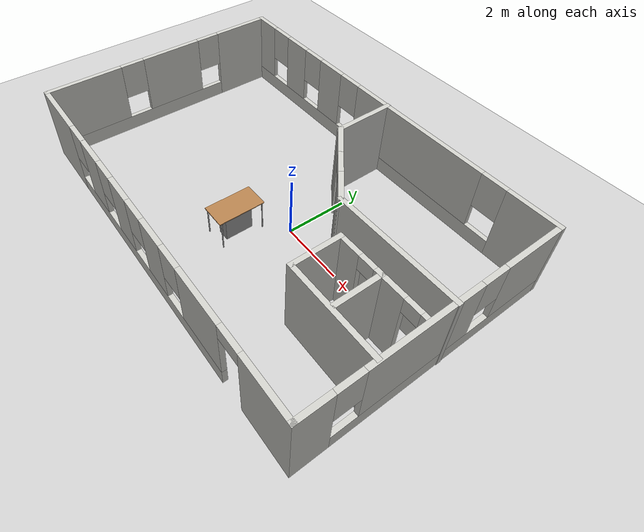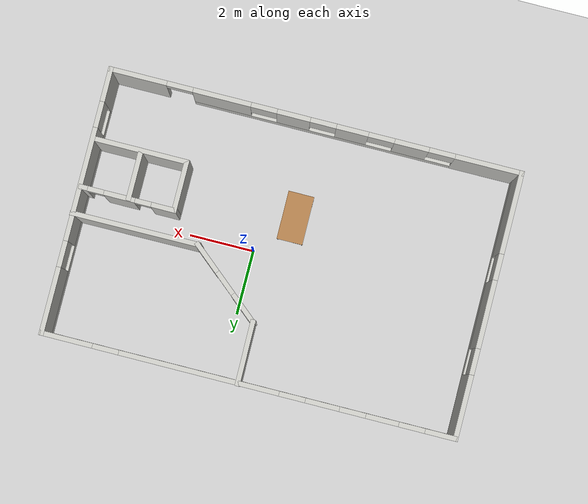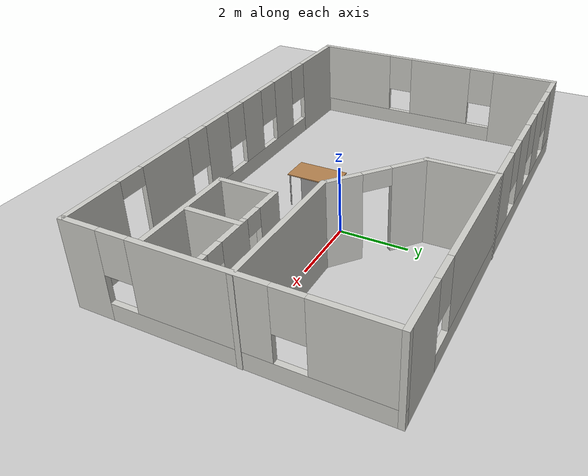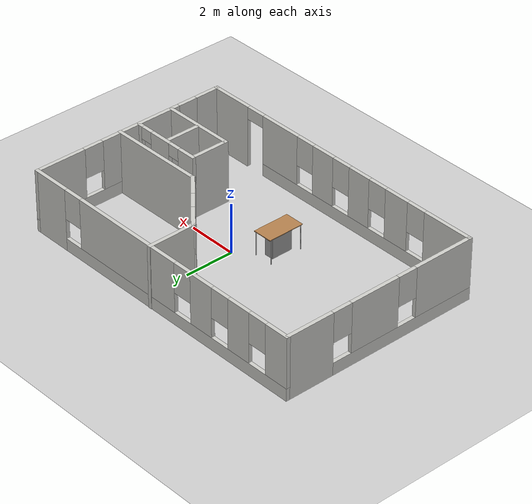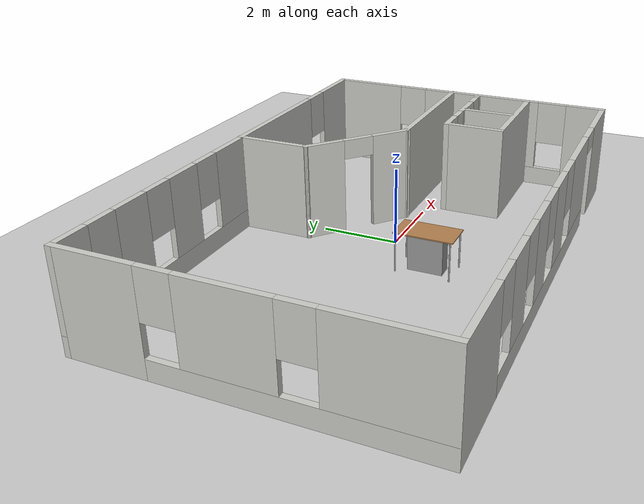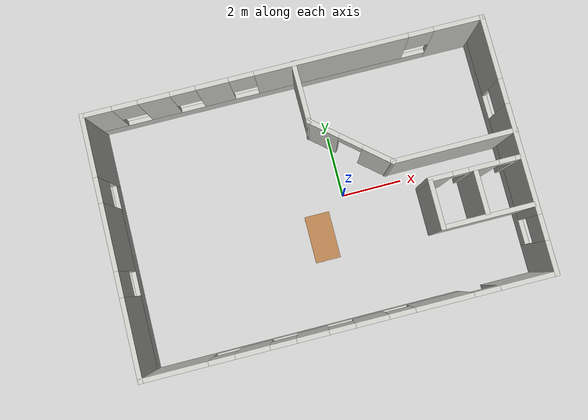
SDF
<sdf version="1.6">
 <world name="default">
  <model name="ground_plane">
   <static>1</static>
   <link name="link">
    <collision name="collision">
     <geometry><plane><normal>0 0 1</normal><size>100 100</size></plane></geometry>
     <surface><friction><ode><mu>100</mu><mu2>50</mu2></ode></friction></surface>
    </collision>
    <visual name="visual">
     <cast_shadows>0</cast_shadows>
     <geometry><plane><normal>0 0 1</normal><size>100 100</size></plane></geometry>
     <material>
      <script><uri>file://media/materials/scripts/gazebo.material</uri><name>Gazebo/Grey</name></script>
     </material>
    </visual>
   </link>
  </model>
  <model name="restaurant">
   <pose>-0.910578 -0.005951 0 0 -0 0</pose>
   <link name="Wall_0">
    <pose>-0.00791 4.04129 0 0 -0 3.14159</pose>
    <visual name="Wall_0_Visual_0">
     <pose>-5.56163 0 1.25 0 -0 0</pose>
     <geometry><box><size>1.62673 0.15 2.5</size></box></geometry>
     <material>
      <script><uri>file://media/materials/scripts/gazebo.material</uri><name>Gazebo/CeilingTiled</name></script>
      <ambient>1 1 1 1</ambient>
     </material>
     <meta><layer>0</layer></meta>
    </visual>
    <collision name="Wall_0_Collision_0">
     <geometry><box><size>1.62673 0.15 2.5</size></box></geometry>
     <pose>-5.56163 0 1.25 0 -0 0</pose>
    </collision>
    <visual name="Wall_0_Visual_1">
     <pose>0.813365 0 0.25 0 -0 0</pose>
     <geometry><box><size>11.1233 0.15 0.5</size></box></geometry>
     <material>
      <script><uri>file://media/materials/scripts/gazebo.material</uri><name>Gazebo/CeilingTiled</name></script>
      <ambient>1 1 1 1</ambient>
     </material>
     <meta><layer>0</layer></meta>
    </visual>
    <collision name="Wall_0_Collision_1">
     <geometry><box><size>11.1233 0.15 0.5</size></box></geometry>
     <pose>0.813365 0 0.25 0 -0 0</pose>
    </collision>
    <visual name="Wall_0_Visual_2">
     <pose>-1.50614 0 1.5 0 -0 0</pose>
     <geometry><box><size>4.88427 0.15 2</size></box></geometry>
     <material>
      <script><uri>file://media/materials/scripts/gazebo.material</uri><name>Gazebo/CeilingTiled</name></script>
      <ambient>1 1 1 1</ambient>
     </material>
     <meta><layer>0</layer></meta>
    </visual>
    <collision name="Wall_0_Collision_2">
     <geometry><box><size>4.88427 0.15 2</size></box></geometry>
     <pose>-1.50614 0 1.5 0 -0 0</pose>
    </collision>
    <visual name="Wall_0_Visual_3">
     <pose>2.25423 0 1.5 0 -0 0</pose>
     <geometry><box><size>1.03646 0.15 2</size></box></geometry>
     <material>
      <script><uri>file://media/materials/scripts/gazebo.material</uri><name>Gazebo/CeilingTiled</name></script>
      <ambient>1 1 1 1</ambient>
     </material>
     <meta><layer>0</layer></meta>
    </visual>
    <collision name="Wall_0_Collision_3">
     <geometry><box><size>1.03646 0.15 2</size></box></geometry>
     <pose>2.25423 0 1.5 0 -0 0</pose>
    </collision>
    <visual name="Wall_0_Visual_4">
     <pose>4.07319 0 1.5 0 -0 0</pose>
     <geometry><box><size>1.00148 0.15 2</size></box></geometry>
     <material>
      <script><uri>file://media/materials/scripts/gazebo.material</uri><name>Gazebo/CeilingTiled</name></script>
      <ambient>1 1 1 1</ambient>
     </material>
     <meta><layer>0</layer></meta>
    </visual>
    <collision name="Wall_0_Collision_4">
     <geometry><box><size>1.00148 0.15 2</size></box></geometry>
     <pose>4.07319 0 1.5 0 -0 0</pose>
    </collision>
    <visual name="Wall_0_Visual_5">
     <pose>5.87447 0 1.5 0 -0 0</pose>
     <geometry><box><size>1.00107 0.15 2</size></box></geometry>
     <material>
      <script><uri>file://media/materials/scripts/gazebo.material</uri><name>Gazebo/CeilingTiled</name></script>
      <ambient>1 1 1 1</ambient>
     </material>
     <meta><layer>0</layer></meta>
    </visual>
    <collision name="Wall_0_Collision_5">
     <geometry><box><size>1.00107 0.15 2</size></box></geometry>
     <pose>5.87447 0 1.5 0 -0 0</pose>
    </collision>
    <visual name="Wall_0_Visual_6">
     <pose>-4.34827 0 1.9 0 -0 0</pose>
     <geometry><box><size>0.8 0.15 1.2</size></box></geometry>
     <material>
      <script><uri>file://media/materials/scripts/gazebo.material</uri><name>Gazebo/CeilingTiled</name></script>
      <ambient>1 1 1 1</ambient>
     </material>
     <meta><layer>0</layer></meta>
    </visual>
    <collision name="Wall_0_Collision_6">
     <geometry><box><size>0.8 0.15 1.2</size></box></geometry>
     <pose>-4.34827 0 1.9 0 -0 0</pose>
    </collision>
    <visual name="Wall_0_Visual_7">
     <pose>1.336 0 1.9 0 -0 0</pose>
     <geometry><box><size>0.8 0.15 1.2</size></box></geometry>
     <material>
      <script><uri>file://media/materials/scripts/gazebo.material</uri><name>Gazebo/CeilingTiled</name></script>
      <ambient>1 1 1 1</ambient>
     </material>
     <meta><layer>0</layer></meta>
    </visual>
    <collision name="Wall_0_Collision_7">
     <geometry><box><size>0.8 0.15 1.2</size></box></geometry>
     <pose>1.336 0 1.9 0 -0 0</pose>
    </collision>
    <visual name="Wall_0_Visual_8">
     <pose>3.17246 0 1.9 0 -0 0</pose>
     <geometry><box><size>0.8 0.15 1.2</size></box></geometry>
     <material>
      <script><uri>file://media/materials/scripts/gazebo.material</uri><name>Gazebo/CeilingTiled</name></script>
      <ambient>1 1 1 1</ambient>
     </material>
     <meta><layer>0</layer></meta>
    </visual>
    <collision name="Wall_0_Collision_8">
     <geometry><box><size>0.8 0.15 1.2</size></box></geometry>
     <pose>3.17246 0 1.9 0 -0 0</pose>
    </collision>
    <visual name="Wall_0_Visual_9">
     <pose>4.97393 0 1.9 0 -0 0</pose>
     <geometry><box><size>0.8 0.15 1.2</size></box></geometry>
     <material>
      <script><uri>file://media/materials/scripts/gazebo.material</uri><name>Gazebo/CeilingTiled</name></script>
      <ambient>1 1 1 1</ambient>
     </material>
     <meta><layer>0</layer></meta>
    </visual>
    <collision name="Wall_0_Collision_9">
     <geometry><box><size>0.8 0.15 1.2</size></box></geometry>
     <pose>4.97393 0 1.9 0 -0 0</pose>
    </collision>
   </link>
   <link name="Wall_1">
    <pose>-6.30791 -0.008707 0 0 0 -1.5708</pose>
    <visual name="Wall_1_Visual_0">
     <pose>-3.11766 0 1.25 0 -0 0</pose>
     <geometry><box><size>2.01468 0.15 2.5</size></box></geometry>
     <material>
      <script><uri>file://media/materials/scripts/gazebo.material</uri><name>Gazebo/CeilingTiled</name></script>
      <ambient>1 1 1 1</ambient>
     </material>
     <meta><layer>0</layer></meta>
    </visual>
    <collision name="Wall_1_Collision_0">
     <geometry><box><size>2.01468 0.15 2.5</size></box></geometry>
     <pose>-3.11766 0 1.25 0 -0 0</pose>
    </collision>
    <visual name="Wall_1_Visual_1">
     <pose>1.00734 0 0.25 0 -0 0</pose>
     <geometry><box><size>6.23532 0.15 0.5</size></box></geometry>
     <material>
      <script><uri>file://media/materials/scripts/gazebo.material</uri><name>Gazebo/CeilingTiled</name></script>
      <ambient>1 1 1 1</ambient>
     </material>
     <meta><layer>0</layer></meta>
    </visual>
    <collision name="Wall_1_Collision_1">
     <geometry><box><size>6.23532 0.15 0.5</size></box></geometry>
     <pose>1.00734 0 0.25 0 -0 0</pose>
    </collision>
    <visual name="Wall_1_Visual_2">
     <pose>-0.267389 0 1.5 0 -0 0</pose>
     <geometry><box><size>2.08586 0.15 2</size></box></geometry>
     <material>
      <script><uri>file://media/materials/scripts/gazebo.material</uri><name>Gazebo/CeilingTiled</name></script>
      <ambient>1 1 1 1</ambient>
     </material>
     <meta><layer>0</layer></meta>
    </visual>
    <collision name="Wall_1_Collision_2">
     <geometry><box><size>2.08586 0.15 2</size></box></geometry>
     <pose>-0.267389 0 1.5 0 -0 0</pose>
    </collision>
    <visual name="Wall_1_Visual_3">
     <pose>2.85027 0 1.5 0 -0 0</pose>
     <geometry><box><size>2.54946 0.15 2</size></box></geometry>
     <material>
      <script><uri>file://media/materials/scripts/gazebo.material</uri><name>Gazebo/CeilingTiled</name></script>
      <ambient>1 1 1 1</ambient>
     </material>
     <meta><layer>0</layer></meta>
    </visual>
    <collision name="Wall_1_Collision_3">
     <geometry><box><size>2.54946 0.15 2</size></box></geometry>
     <pose>2.85027 0 1.5 0 -0 0</pose>
    </collision>
    <visual name="Wall_1_Visual_4">
     <pose>-1.71032 0 1.9 0 -0 0</pose>
     <geometry><box><size>0.8 0.15 1.2</size></box></geometry>
     <material>
      <script><uri>file://media/materials/scripts/gazebo.material</uri><name>Gazebo/CeilingTiled</name></script>
      <ambient>1 1 1 1</ambient>
     </material>
     <meta><layer>0</layer></meta>
    </visual>
    <collision name="Wall_1_Collision_4">
     <geometry><box><size>0.8 0.15 1.2</size></box></geometry>
     <pose>-1.71032 0 1.9 0 -0 0</pose>
    </collision>
    <visual name="Wall_1_Visual_5">
     <pose>1.17554 0 1.9 0 -0 0</pose>
     <geometry><box><size>0.8 0.15 1.2</size></box></geometry>
     <material>
      <script><uri>file://media/materials/scripts/gazebo.material</uri><name>Gazebo/CeilingTiled</name></script>
      <ambient>1 1 1 1</ambient>
     </material>
     <meta><layer>0</layer></meta>
    </visual>
    <collision name="Wall_1_Collision_5">
     <geometry><box><size>0.8 0.15 1.2</size></box></geometry>
     <pose>1.17554 0 1.9 0 -0 0</pose>
    </collision>
   </link>
   <link name="Wall_12">
    <collision name="Wall_12_Collision">
     <geometry><box><size>3 0.15 2.5</size></box></geometry>
     <pose>0 0 1.25 0 -0 0</pose>
    </collision>
    <visual name="Wall_12_Visual">
     <pose>0 0 1.25 0 -0 0</pose>
     <geometry><box><size>3 0.15 2.5</size></box></geometry>
     <material>
      <script><uri>file://media/materials/scripts/gazebo.material</uri><name>Gazebo/CeilingTiled</name></script>
      <ambient>1 1 1 1</ambient>
     </material>
     <meta><layer>0</layer></meta>
    </visual>
    <pose>4.83059 -1.92356 0 0 -0 3.14159</pose>
   </link>
   <link name="Wall_15">
    <pose>4.83059 -0.436903 0 0 -0 3.14159</pose>
    <visual name="Wall_15_Visual_0">
     <pose>-1.36407 0 1.25 0 -0 0</pose>
     <geometry><box><size>0.271862 0.15 2.5</size></box></geometry>
     <material>
      <script><uri>file://media/materials/scripts/gazebo.material</uri><name>Gazebo/CeilingTiled</name></script>
      <ambient>1 1 1 1</ambient>
     </material>
     <meta><layer>0</layer></meta>
    </visual>
    <collision name="Wall_15_Collision_0">
     <geometry><box><size>0.271862 0.15 2.5</size></box></geometry>
     <pose>-1.36407 0 1.25 0 -0 0</pose>
    </collision>
    <visual name="Wall_15_Visual_1">
     <pose>-0.253638 0 1.25 0 -0 0</pose>
     <geometry><box><size>0.949 0.15 2.5</size></box></geometry>
     <material>
      <script><uri>file://media/materials/scripts/gazebo.material</uri><name>Gazebo/CeilingTiled</name></script>
      <ambient>1 1 1 1</ambient>
     </material>
     <meta><layer>0</layer></meta>
    </visual>
    <collision name="Wall_15_Collision_1">
     <geometry><box><size>0.949 0.15 2.5</size></box></geometry>
     <pose>-0.253638 0 1.25 0 -0 0</pose>
    </collision>
    <visual name="Wall_15_Visual_2">
     <pose>1.11043 0 1.25 0 -0 0</pose>
     <geometry><box><size>0.779138 0.15 2.5</size></box></geometry>
     <material>
      <script><uri>file://media/materials/scripts/gazebo.material</uri><name>Gazebo/CeilingTiled</name></script>
      <ambient>1 1 1 1</ambient>
     </material>
     <meta><layer>0</layer></meta>
    </visual>
    <collision name="Wall_15_Collision_2">
     <geometry><box><size>0.779138 0.15 2.5</size></box></geometry>
     <pose>1.11043 0 1.25 0 -0 0</pose>
    </collision>
    <visual name="Wall_15_Visual_3">
     <pose>-0.978138 0 2.25 0 -0 0</pose>
     <geometry><box><size>0.5 0.15 0.5</size></box></geometry>
     <material>
      <script><uri>file://media/materials/scripts/gazebo.material</uri><name>Gazebo/CeilingTiled</name></script>
      <ambient>1 1 1 1</ambient>
     </material>
     <meta><layer>0</layer></meta>
    </visual>
    <collision name="Wall_15_Collision_3">
     <geometry><box><size>0.5 0.15 0.5</size></box></geometry>
     <pose>-0.978138 0 2.25 0 -0 0</pose>
    </collision>
    <visual name="Wall_15_Visual_4">
     <pose>0.470862 0 2.25 0 -0 0</pose>
     <geometry><box><size>0.5 0.15 0.5</size></box></geometry>
     <material>
      <script><uri>file://media/materials/scripts/gazebo.material</uri><name>Gazebo/CeilingTiled</name></script>
      <ambient>1 1 1 1</ambient>
     </material>
     <meta><layer>0</layer></meta>
    </visual>
    <collision name="Wall_15_Collision_4">
     <geometry><box><size>0.5 0.15 0.5</size></box></geometry>
     <pose>0.470862 0 2.25 0 -0 0</pose>
    </collision>
   </link>
   <link name="Wall_16">
    <collision name="Wall_16_Collision">
     <geometry><box><size>1.63665 0.15 2.5</size></box></geometry>
     <pose>0 0 1.25 0 -0 0</pose>
    </collision>
    <visual name="Wall_16_Visual">
     <pose>0 0 1.25 0 -0 0</pose>
     <geometry><box><size>1.63665 0.15 2.5</size></box></geometry>
     <material>
      <script><uri>file://media/materials/scripts/gazebo.material</uri><name>Gazebo/CeilingTiled</name></script>
      <ambient>1 1 1 1</ambient>
     </material>
     <meta><layer>0</layer></meta>
    </visual>
    <pose>3.40559 -1.18023 0 0 0 -1.5708</pose>
   </link>
   <link name="Wall_18">
    <collision name="Wall_18_Collision">
     <geometry><box><size>1.5 0.15 2.5</size></box></geometry>
     <pose>0 0 1.25 0 -0 0</pose>
    </collision>
    <visual name="Wall_18_Visual">
     <pose>0 0 1.25 0 -0 0</pose>
     <geometry><box><size>1.5 0.15 2.5</size></box></geometry>
     <material>
      <script><uri>file://media/materials/scripts/gazebo.material</uri><name>Gazebo/CeilingTiled</name></script>
      <ambient>1 1 1 1</ambient>
     </material>
     <meta><layer>0</layer></meta>
    </visual>
    <pose>4.80391 -1.12939 0 0 0 -1.5708</pose>
   </link>
   <link name="Wall_2">
    <pose>-0.00791 -4.05871 0 0 -0 0</pose>
    <visual name="Wall_2_Visual_0">
     <pose>-5.32353 0 1.25 0 -0 0</pose>
     <geometry><box><size>2.10294 0.15 2.5</size></box></geometry>
     <material>
      <script><uri>file://media/materials/scripts/gazebo.material</uri><name>Gazebo/CeilingTiled</name></script>
      <ambient>1 1 1 1</ambient>
     </material>
     <meta><layer>0</layer></meta>
    </visual>
    <collision name="Wall_2_Collision_0">
     <geometry><box><size>2.10294 0.15 2.5</size></box></geometry>
     <pose>-5.32353 0 1.25 0 -0 0</pose>
    </collision>
    <visual name="Wall_2_Visual_1">
     <pose>5.47361 0 1.25 0 -0 0</pose>
     <geometry><box><size>1.80279 0.15 2.5</size></box></geometry>
     <material>
      <script><uri>file://media/materials/scripts/gazebo.material</uri><name>Gazebo/CeilingTiled</name></script>
      <ambient>1 1 1 1</ambient>
     </material>
     <meta><layer>0</layer></meta>
    </visual>
    <collision name="Wall_2_Collision_1">
     <geometry><box><size>1.80279 0.15 2.5</size></box></geometry>
     <pose>5.47361 0 1.25 0 -0 0</pose>
    </collision>
    <visual name="Wall_2_Visual_2">
     <pose>-0.249924 0 0.25 0 -0 0</pose>
     <geometry><box><size>8.04427 0.15 0.5</size></box></geometry>
     <material>
      <script><uri>file://media/materials/scripts/gazebo.material</uri><name>Gazebo/CeilingTiled</name></script>
      <ambient>1 1 1 1</ambient>
     </material>
     <meta><layer>0</layer></meta>
    </visual>
    <collision name="Wall_2_Collision_2">
     <geometry><box><size>8.04427 0.15 0.5</size></box></geometry>
     <pose>-0.249924 0 0.25 0 -0 0</pose>
    </collision>
    <visual name="Wall_2_Visual_3">
     <pose>-2.94509 0 1.5 0 -0 0</pose>
     <geometry><box><size>1.05395 0.15 2</size></box></geometry>
     <material>
      <script><uri>file://media/materials/scripts/gazebo.material</uri><name>Gazebo/CeilingTiled</name></script>
      <ambient>1 1 1 1</ambient>
     </material>
     <meta><layer>0</layer></meta>
    </visual>
    <collision name="Wall_2_Collision_3">
     <geometry><box><size>1.05395 0.15 2</size></box></geometry>
     <pose>-2.94509 0 1.5 0 -0 0</pose>
    </collision>
    <visual name="Wall_2_Visual_4">
     <pose>-1.12612 0 1.5 0 -0 0</pose>
     <geometry><box><size>0.983986 0.15 2</size></box></geometry>
     <material>
      <script><uri>file://media/materials/scripts/gazebo.material</uri><name>Gazebo/CeilingTiled</name></script>
      <ambient>1 1 1 1</ambient>
     </material>
     <meta><layer>0</layer></meta>
    </visual>
    <collision name="Wall_2_Collision_4">
     <geometry><box><size>0.983986 0.15 2</size></box></geometry>
     <pose>-1.12612 0 1.5 0 -0 0</pose>
    </collision>
    <visual name="Wall_2_Visual_5">
     <pose>0.675358 0 1.5 0 -0 0</pose>
     <geometry><box><size>1.01897 0.15 2</size></box></geometry>
     <material>
      <script><uri>file://media/materials/scripts/gazebo.material</uri><name>Gazebo/CeilingTiled</name></script>
      <ambient>1 1 1 1</ambient>
     </material>
     <meta><layer>0</layer></meta>
    </visual>
    <collision name="Wall_2_Collision_5">
     <geometry><box><size>1.01897 0.15 2</size></box></geometry>
     <pose>0.675358 0 1.5 0 -0 0</pose>
    </collision>
    <visual name="Wall_2_Visual_6">
     <pose>2.87853 0 1.5 0 -0 0</pose>
     <geometry><box><size>1.78737 0.15 2</size></box></geometry>
     <material>
      <script><uri>file://media/materials/scripts/gazebo.material</uri><name>Gazebo/CeilingTiled</name></script>
      <ambient>1 1 1 1</ambient>
     </material>
     <meta><layer>0</layer></meta>
    </visual>
    <collision name="Wall_2_Collision_6">
     <geometry><box><size>1.78737 0.15 2</size></box></geometry>
     <pose>2.87853 0 1.5 0 -0 0</pose>
    </collision>
    <visual name="Wall_2_Visual_7">
     <pose>-3.87206 0 1.9 0 -0 0</pose>
     <geometry><box><size>0.8 0.15 1.2</size></box></geometry>
     <material>
      <script><uri>file://media/materials/scripts/gazebo.material</uri><name>Gazebo/CeilingTiled</name></script>
      <ambient>1 1 1 1</ambient>
     </material>
     <meta><layer>0</layer></meta>
    </visual>
    <collision name="Wall_2_Collision_7">
     <geometry><box><size>0.8 0.15 1.2</size></box></geometry>
     <pose>-3.87206 0 1.9 0 -0 0</pose>
    </collision>
    <visual name="Wall_2_Visual_8">
     <pose>-2.01811 0 1.9 0 -0 0</pose>
     <geometry><box><size>0.8 0.15 1.2</size></box></geometry>
     <material>
      <script><uri>file://media/materials/scripts/gazebo.material</uri><name>Gazebo/CeilingTiled</name></script>
      <ambient>1 1 1 1</ambient>
     </material>
     <meta><layer>0</layer></meta>
    </visual>
    <collision name="Wall_2_Collision_8">
     <geometry><box><size>0.8 0.15 1.2</size></box></geometry>
     <pose>-2.01811 0 1.9 0 -0 0</pose>
    </collision>
    <visual name="Wall_2_Visual_9">
     <pose>-0.234126 0 1.9 0 -0 0</pose>
     <geometry><box><size>0.8 0.15 1.2</size></box></geometry>
     <material>
      <script><uri>file://media/materials/scripts/gazebo.material</uri><name>Gazebo/CeilingTiled</name></script>
      <ambient>1 1 1 1</ambient>
     </material>
     <meta><layer>0</layer></meta>
    </visual>
    <collision name="Wall_2_Collision_9">
     <geometry><box><size>0.8 0.15 1.2</size></box></geometry>
     <pose>-0.234126 0 1.9 0 -0 0</pose>
    </collision>
    <visual name="Wall_2_Visual_10">
     <pose>1.58484 0 1.9 0 -0 0</pose>
     <geometry><box><size>0.8 0.15 1.2</size></box></geometry>
     <material>
      <script><uri>file://media/materials/scripts/gazebo.material</uri><name>Gazebo/CeilingTiled</name></script>
      <ambient>1 1 1 1</ambient>
     </material>
     <meta><layer>0</layer></meta>
    </visual>
    <collision name="Wall_2_Collision_10">
     <geometry><box><size>0.8 0.15 1.2</size></box></geometry>
     <pose>1.58484 0 1.9 0 -0 0</pose>
    </collision>
    <visual name="Wall_2_Visual_11">
     <pose>4.17221 0 2.25 0 -0 0</pose>
     <geometry><box><size>0.8 0.15 0.5</size></box></geometry>
     <material>
      <script><uri>file://media/materials/scripts/gazebo.material</uri><name>Gazebo/CeilingTiled</name></script>
      <ambient>1 1 1 1</ambient>
     </material>
     <meta><layer>0</layer></meta>
    </visual>
    <collision name="Wall_2_Collision_11">
     <geometry><box><size>0.8 0.15 0.5</size></box></geometry>
     <pose>4.17221 0 2.25 0 -0 0</pose>
    </collision>
   </link>
   <link name="Wall_3">
    <pose>6.29209 -0.008707 0 0 -0 1.5708</pose>
    <visual name="Wall_3_Visual_0">
     <pose>-3.58485 0 1.25 0 -0 0</pose>
     <geometry><box><size>1.08029 0.15 2.5</size></box></geometry>
     <material>
      <script><uri>file://media/materials/scripts/gazebo.material</uri><name>Gazebo/CeilingTiled</name></script>
      <ambient>1 1 1 1</ambient>
     </material>
     <meta><layer>0</layer></meta>
    </visual>
    <collision name="Wall_3_Collision_0">
     <geometry><box><size>1.08029 0.15 2.5</size></box></geometry>
     <pose>-3.58485 0 1.25 0 -0 0</pose>
    </collision>
    <visual name="Wall_3_Visual_1">
     <pose>0.540147 0 0.25 0 -0 0</pose>
     <geometry><box><size>7.16971 0.15 0.5</size></box></geometry>
     <material>
      <script><uri>file://media/materials/scripts/gazebo.material</uri><name>Gazebo/CeilingTiled</name></script>
      <ambient>1 1 1 1</ambient>
     </material>
     <meta><layer>0</layer></meta>
    </visual>
    <collision name="Wall_3_Collision_1">
     <geometry><box><size>7.16971 0.15 0.5</size></box></geometry>
     <pose>0.540147 0 0.25 0 -0 0</pose>
    </collision>
    <visual name="Wall_3_Visual_2">
     <pose>-0.502174 0 1.5 0 -0 0</pose>
     <geometry><box><size>3.48507 0.15 2</size></box></geometry>
     <material>
      <script><uri>file://media/materials/scripts/gazebo.material</uri><name>Gazebo/CeilingTiled</name></script>
      <ambient>1 1 1 1</ambient>
     </material>
     <meta><layer>0</layer></meta>
    </visual>
    <collision name="Wall_3_Collision_2">
     <geometry><box><size>3.48507 0.15 2</size></box></geometry>
     <pose>-0.502174 0 1.5 0 -0 0</pose>
    </collision>
    <visual name="Wall_3_Visual_3">
     <pose>3.08268 0 1.5 0 -0 0</pose>
     <geometry><box><size>2.08464 0.15 2</size></box></geometry>
     <material>
      <script><uri>file://media/materials/scripts/gazebo.material</uri><name>Gazebo/CeilingTiled</name></script>
      <ambient>1 1 1 1</ambient>
     </material>
     <meta><layer>0</layer></meta>
    </visual>
    <collision name="Wall_3_Collision_3">
     <geometry><box><size>2.08464 0.15 2</size></box></geometry>
     <pose>3.08268 0 1.5 0 -0 0</pose>
    </collision>
    <visual name="Wall_3_Visual_4">
     <pose>-2.64471 0 1.9 0 -0 0</pose>
     <geometry><box><size>0.8 0.15 1.2</size></box></geometry>
     <material>
      <script><uri>file://media/materials/scripts/gazebo.material</uri><name>Gazebo/CeilingTiled</name></script>
      <ambient>1 1 1 1</ambient>
     </material>
     <meta><layer>0</layer></meta>
    </visual>
    <collision name="Wall_3_Collision_4">
     <geometry><box><size>0.8 0.15 1.2</size></box></geometry>
     <pose>-2.64471 0 1.9 0 -0 0</pose>
    </collision>
    <visual name="Wall_3_Visual_5">
     <pose>1.64036 0 1.9 0 -0 0</pose>
     <geometry><box><size>0.8 0.15 1.2</size></box></geometry>
     <material>
      <script><uri>file://media/materials/scripts/gazebo.material</uri><name>Gazebo/CeilingTiled</name></script>
      <ambient>1 1 1 1</ambient>
     </material>
     <meta><layer>0</layer></meta>
    </visual>
    <collision name="Wall_3_Collision_5">
     <geometry><box><size>0.8 0.15 1.2</size></box></geometry>
     <pose>1.64036 0 1.9 0 -0 0</pose>
    </collision>
   </link>
   <link name="Wall_5">
    <collision name="Wall_5_Collision">
     <geometry><box><size>2.01717 0.15 2.5</size></box></geometry>
     <pose>0 0 1.25 0 -0 0</pose>
    </collision>
    <visual name="Wall_5_Visual">
     <pose>0 0 1.25 0 -0 0</pose>
     <geometry><box><size>2.01717 0.15 2.5</size></box></geometry>
     <material>
      <script><uri>file://media/materials/scripts/gazebo.material</uri><name>Gazebo/CeilingTiled</name></script>
      <ambient>1 1 1 1</ambient>
     </material>
     <meta><layer>0</layer></meta>
    </visual>
    <pose>0.317273 3.1245 0 0 0 -1.5619</pose>
   </link>
   <link name="Wall_7">
    <collision name="Wall_7_Collision">
     <geometry><box><size>3.98304 0.15 2.5</size></box></geometry>
     <pose>0 0 1.25 0 -0 0</pose>
    </collision>
    <visual name="Wall_7_Visual">
     <pose>0 0 1.25 0 -0 0</pose>
     <geometry><box><size>3.98304 0.15 2.5</size></box></geometry>
     <material>
      <script><uri>file://media/materials/scripts/gazebo.material</uri><name>Gazebo/CeilingTiled</name></script>
      <ambient>1 1 1 1</ambient>
     </material>
     <meta><layer>0</layer></meta>
    </visual>
    <pose>4.39108 0.376451 0 0 0 -3.13716</pose>
   </link>
   <link name="Wall_9">
    <pose>1.40008 1.27945 0 0 0 -0.703507</pose>
    <visual name="Wall_9_Visual_0">
     <pose>-0.939222 0 1.25 0 -0 0</pose>
     <geometry><box><size>1.08963 0.15 2.5</size></box></geometry>
     <material>
      <script><uri>file://media/materials/scripts/gazebo.material</uri><name>Gazebo/CeilingTiled</name></script>
      <ambient>1 1 1 1</ambient>
     </material>
     <meta><layer>0</layer></meta>
    </visual>
    <collision name="Wall_9_Collision_0">
     <geometry><box><size>1.08963 0.15 2.5</size></box></geometry>
     <pose>-0.939222 0 1.25 0 -0 0</pose>
    </collision>
    <visual name="Wall_9_Visual_1">
     <pose>0.944814 0 1.25 0 -0 0</pose>
     <geometry><box><size>1.07844 0.15 2.5</size></box></geometry>
     <material>
      <script><uri>file://media/materials/scripts/gazebo.material</uri><name>Gazebo/CeilingTiled</name></script>
      <ambient>1 1 1 1</ambient>
     </material>
     <meta><layer>0</layer></meta>
    </visual>
    <collision name="Wall_9_Collision_1">
     <geometry><box><size>1.07844 0.15 2.5</size></box></geometry>
     <pose>0.944814 0 1.25 0 -0 0</pose>
    </collision>
    <visual name="Wall_9_Visual_2">
     <pose>0.005593 0 2.25 0 -0 0</pose>
     <geometry><box><size>0.8 0.15 0.5</size></box></geometry>
     <material>
      <script><uri>file://media/materials/scripts/gazebo.material</uri><name>Gazebo/CeilingTiled</name></script>
      <ambient>1 1 1 1</ambient>
     </material>
     <meta><layer>0</layer></meta>
    </visual>
    <collision name="Wall_9_Collision_2">
     <geometry><box><size>0.8 0.15 0.5</size></box></geometry>
     <pose>0.005593 0 2.25 0 -0 0</pose>
    </collision>
   </link>
   <static>1</static>
  </model>
  <model name="table-solid_clone_0_clone_1">
   <link name="link">
    <visual name="visual1">
     <pose>0 0 1 0 -0 0</pose>
     <geometry><box><size>1.5 0.8 0.03</size></box></geometry>
     <material>
      <script><uri>file://media/materials/scripts/gazebo.material</uri><name>Gazebo/Wood</name></script>
      <shader type="pixel"/>
      <ambient>1 1 1 1</ambient>
      <diffuse>1 1 1 1</diffuse>
      <specular>0.2 0.2 0.2 1</specular>
      <emissive>0 0 0 1</emissive>
     </material>
    </visual>
    <visual name="front_left_leg">
     <pose>0.68 0.38 0.5 0 -0 0</pose>
     <geometry><cylinder><radius>0.02</radius><length>1</length></cylinder></geometry>
     <material>
      <script><uri>file://media/materials/scripts/gazebo.material</uri><name>Gazebo/Grey</name></script>
      <shader type="pixel"/>
      <ambient>0.3 0.3 0.3 1</ambient>
      <diffuse>0.7 0.7 0.7 1</diffuse>
      <specular>0.01 0.01 0.01 1</specular>
      <emissive>0 0 0 1</emissive>
     </material>
    </visual>
    <visual name="front_right_leg">
     <pose>0.68 -0.38 0.5 0 -0 0</pose>
     <geometry><cylinder><radius>0.02</radius><length>1</length></cylinder></geometry>
     <material>
      <script><uri>file://media/materials/scripts/gazebo.material</uri><name>Gazebo/Grey</name></script>
      <shader type="pixel"/>
      <ambient>0.3 0.3 0.3 1</ambient>
      <diffuse>0.7 0.7 0.7 1</diffuse>
      <specular>0.01 0.01 0.01 1</specular>
      <emissive>0 0 0 1</emissive>
     </material>
    </visual>
    <visual name="back_right_leg">
     <pose>-0.68 -0.38 0.5 0 -0 0</pose>
     <geometry><cylinder><radius>0.02</radius><length>1</length></cylinder></geometry>
     <material>
      <script><uri>file://media/materials/scripts/gazebo.material</uri><name>Gazebo/Grey</name></script>
      <shader type="pixel"/>
      <ambient>0.3 0.3 0.3 1</ambient>
      <diffuse>0.7 0.7 0.7 1</diffuse>
      <specular>0.01 0.01 0.01 1</specular>
      <emissive>0 0 0 1</emissive>
     </material>
    </visual>
    <visual name="back_left_leg">
     <pose>-0.68 0.38 0.5 0 -0 0</pose>
     <geometry><cylinder><radius>0.02</radius><length>1</length></cylinder></geometry>
     <material>
      <script><uri>file://media/materials/scripts/gazebo.material</uri><name>Gazebo/Grey</name></script>
      <shader type="pixel"/>
      <ambient>0.3 0.3 0.3 1</ambient>
      <diffuse>0.7 0.7 0.7 1</diffuse>
      <specular>0.01 0.01 0.01 1</specular>
      <emissive>0 0 0 1</emissive>
     </material>
    </visual>
    <collision name="surface">
     <pose>0 0 1 0 -0 0</pose>
     <geometry><box><size>1.5 0.8 0.03</size></box></geometry>
     <surface>
      <friction>
       <ode><mu>0.6</mu><mu2>0.6</mu2><fdir1>0 0 0</fdir1><slip1>0</slip1><slip2>0</slip2></ode>
       <torsional>
        <coefficient>1</coefficient>
        <patch_radius>0</patch_radius>
        <surface_radius>0</surface_radius>
        <use_patch_radius>1</use_patch_radius>
        <ode><slip>0</slip></ode>
       </torsional>
      </friction>
      <bounce><restitution_coefficient>0</restitution_coefficient><threshold>1e+06</threshold></bounce>
      <contact>
       <collide_without_contact>0</collide_without_contact>
       <collide_without_contact_bitmask>1</collide_without_contact_bitmask>
       <collide_bitmask>1</collide_bitmask>
       <ode>
        <soft_cfm>0</soft_cfm>
        <soft_erp>0.2</soft_erp>
        <kp>1e+13</kp>
        <kd>1</kd>
        <max_vel>0.01</max_vel>
        <min_depth>0</min_depth>
       </ode>
       <bullet>
        <split_impulse>1</split_impulse>
        <split_impulse_penetration_threshold>-0.01</split_impulse_penetration_threshold>
        <soft_cfm>0</soft_cfm>
        <soft_erp>0.2</soft_erp>
        <kp>1e+13</kp>
        <kd>1</kd>
       </bullet>
      </contact>
     </surface>
    </collision>
    <collision name="front_left_leg">
     <pose>0.68 0.38 0.5 0 -0 0</pose>
     <geometry><cylinder><radius>0.02</radius><length>1</length></cylinder></geometry>
     <surface>
      <friction>
       <ode><mu>1</mu><mu2>1</mu2><fdir1>0 0 0</fdir1><slip1>0</slip1><slip2>0</slip2></ode>
       <torsional>
        <coefficient>1</coefficient>
        <patch_radius>0</patch_radius>
        <surface_radius>0</surface_radius>
        <use_patch_radius>1</use_patch_radius>
        <ode><slip>0</slip></ode>
       </torsional>
      </friction>
      <bounce><restitution_coefficient>0</restitution_coefficient><threshold>1e+06</threshold></bounce>
      <contact>
       <collide_without_contact>0</collide_without_contact>
       <collide_without_contact_bitmask>1</collide_without_contact_bitmask>
       <collide_bitmask>1</collide_bitmask>
       <ode>
        <soft_cfm>0</soft_cfm>
        <soft_erp>0.2</soft_erp>
        <kp>1e+13</kp>
        <kd>1</kd>
        <max_vel>0.01</max_vel>
        <min_depth>0</min_depth>
       </ode>
       <bullet>
        <split_impulse>1</split_impulse>
        <split_impulse_penetration_threshold>-0.01</split_impulse_penetration_threshold>
        <soft_cfm>0</soft_cfm>
        <soft_erp>0.2</soft_erp>
        <kp>1e+13</kp>
        <kd>1</kd>
       </bullet>
      </contact>
     </surface>
    </collision>
    <collision name="front_right_leg">
     <pose>0.68 -0.38 0.5 0 -0 0</pose>
     <geometry><cylinder><radius>0.02</radius><length>1</length></cylinder></geometry>
     <surface>
      <friction>
       <ode><mu>1</mu><mu2>1</mu2><fdir1>0 0 0</fdir1><slip1>0</slip1><slip2>0</slip2></ode>
       <torsional>
        <coefficient>1</coefficient>
        <patch_radius>0</patch_radius>
        <surface_radius>0</surface_radius>
        <use_patch_radius>1</use_patch_radius>
        <ode><slip>0</slip></ode>
       </torsional>
      </friction>
      <bounce><restitution_coefficient>0</restitution_coefficient><threshold>1e+06</threshold></bounce>
      <contact>
       <collide_without_contact>0</collide_without_contact>
       <collide_without_contact_bitmask>1</collide_without_contact_bitmask>
       <collide_bitmask>1</collide_bitmask>
       <ode>
        <soft_cfm>0</soft_cfm>
        <soft_erp>0.2</soft_erp>
        <kp>1e+13</kp>
        <kd>1</kd>
        <max_vel>0.01</max_vel>
        <min_depth>0</min_depth>
       </ode>
       <bullet>
        <split_impulse>1</split_impulse>
        <split_impulse_penetration_threshold>-0.01</split_impulse_penetration_threshold>
        <soft_cfm>0</soft_cfm>
        <soft_erp>0.2</soft_erp>
        <kp>1e+13</kp>
        <kd>1</kd>
       </bullet>
      </contact>
     </surface>
    </collision>
    <collision name="back_right_leg">
     <pose>-0.68 -0.38 0.5 0 -0 0</pose>
     <geometry><cylinder><radius>0.02</radius><length>1</length></cylinder></geometry>
     <surface>
      <friction>
       <ode><mu>1</mu><mu2>1</mu2><fdir1>0 0 0</fdir1><slip1>0</slip1><slip2>0</slip2></ode>
       <torsional>
        <coefficient>1</coefficient>
        <patch_radius>0</patch_radius>
        <surface_radius>0</surface_radius>
        <use_patch_radius>1</use_patch_radius>
        <ode><slip>0</slip></ode>
       </torsional>
      </friction>
      <bounce><restitution_coefficient>0</restitution_coefficient><threshold>1e+06</threshold></bounce>
      <contact>
       <collide_without_contact>0</collide_without_contact>
       <collide_without_contact_bitmask>1</collide_without_contact_bitmask>
       <collide_bitmask>1</collide_bitmask>
       <ode>
        <soft_cfm>0</soft_cfm>
        <soft_erp>0.2</soft_erp>
        <kp>1e+13</kp>
        <kd>1</kd>
        <max_vel>0.01</max_vel>
        <min_depth>0</min_depth>
       </ode>
       <bullet>
        <split_impulse>1</split_impulse>
        <split_impulse_penetration_threshold>-0.01</split_impulse_penetration_threshold>
        <soft_cfm>0</soft_cfm>
        <soft_erp>0.2</soft_erp>
        <kp>1e+13</kp>
        <kd>1</kd>
       </bullet>
      </contact>
     </surface>
    </collision>
    <collision name="back_left_leg">
     <pose>-0.68 0.38 0.5 0 -0 0</pose>
     <geometry><cylinder><radius>0.02</radius><length>1</length></cylinder></geometry>
     <surface>
      <friction>
       <ode><mu>1</mu><mu2>1</mu2><fdir1>0 0 0</fdir1><slip1>0</slip1><slip2>0</slip2></ode>
       <torsional>
        <coefficient>1</coefficient>
        <patch_radius>0</patch_radius>
        <surface_radius>0</surface_radius>
        <use_patch_radius>1</use_patch_radius>
        <ode><slip>0</slip></ode>
       </torsional>
      </friction>
      <bounce><restitution_coefficient>0</restitution_coefficient><threshold>1e+06</threshold></bounce>
      <contact>
       <collide_without_contact>0</collide_without_contact>
       <collide_without_contact_bitmask>1</collide_without_contact_bitmask>
       <collide_bitmask>1</collide_bitmask>
       <ode>
        <soft_cfm>0</soft_cfm>
        <soft_erp>0.2</soft_erp>
        <kp>1e+13</kp>
        <kd>1</kd>
        <max_vel>0.01</max_vel>
        <min_depth>0</min_depth>
       </ode>
       <bullet>
        <split_impulse>1</split_impulse>
        <split_impulse_penetration_threshold>-0.01</split_impulse_penetration_threshold>
        <soft_cfm>0</soft_cfm>
        <soft_erp>0.2</soft_erp>
        <kp>1e+13</kp>
        <kd>1</kd>
       </bullet>
      </contact>
     </surface>
    </collision>
   </link>
   <link name="link_1">
    <pose>0.000711 -0.001597 0.5 0 -0 0</pose>
    <inertial>
     <mass>0.336991</mass>
     <inertia>
      <ixx>0.0321457</ixx>
      <ixy>0</ixy>
      <ixz>0</ixz>
      <iyy>0.0501251</iyy>
      <iyz>0</iyz>
      <izz>0.0261056</izz>
     </inertia>
    </inertial>
    <visual name="visual">
     <geometry><box><size>0.885956 0.380374 1</size></box></geometry>
     <material>
      <lighting>1</lighting>
      <script><uri>file://media/materials/scripts/gazebo.material</uri><name>Gazebo/Grey</name></script>
      <shader type="pixel"><normal_map>__default__</normal_map></shader>
      <ambient>0.3 0.3 0.3 1</ambient>
      <diffuse>0.7 0.7 0.7 1</diffuse>
      <specular>0.01 0.01 0.01 1</specular>
      <emissive>0 0 0 1</emissive>
     </material>
    </visual>
    <collision name="collision">
     <geometry><box><size>0.885956 0.380374 1</size></box></geometry>
     <surface>
      <friction>
       <ode><mu>1</mu><mu2>1</mu2><fdir1>0 0 0</fdir1><slip1>0</slip1><slip2>0</slip2></ode>
       <torsional>
        <coefficient>1</coefficient>
        <patch_radius>0</patch_radius>
        <surface_radius>0</surface_radius>
        <use_patch_radius>1</use_patch_radius>
        <ode><slip>0</slip></ode>
       </torsional>
      </friction>
      <bounce><restitution_coefficient>0</restitution_coefficient><threshold>1e+06</threshold></bounce>
      <contact>
       <collide_without_contact>0</collide_without_contact>
       <collide_without_contact_bitmask>1</collide_without_contact_bitmask>
       <collide_bitmask>1</collide_bitmask>
       <ode>
        <soft_cfm>0</soft_cfm>
        <soft_erp>0.2</soft_erp>
        <kp>1e+13</kp>
        <kd>1</kd>
        <max_vel>0.01</max_vel>
        <min_depth>0</min_depth>
       </ode>
       <bullet>
        <split_impulse>1</split_impulse>
        <split_impulse_penetration_threshold>-0.01</split_impulse_penetration_threshold>
        <soft_cfm>0</soft_cfm>
        <soft_erp>0.2</soft_erp>
        <kp>1e+13</kp>
        <kd>1</kd>
       </bullet>
      </contact>
     </surface>
    </collision>
   </link>
   <static>1</static>
   <pose>-1.02374 -1.23839 0 0 0 -1.5684</pose>
  </model>
 </world>
</sdf>
